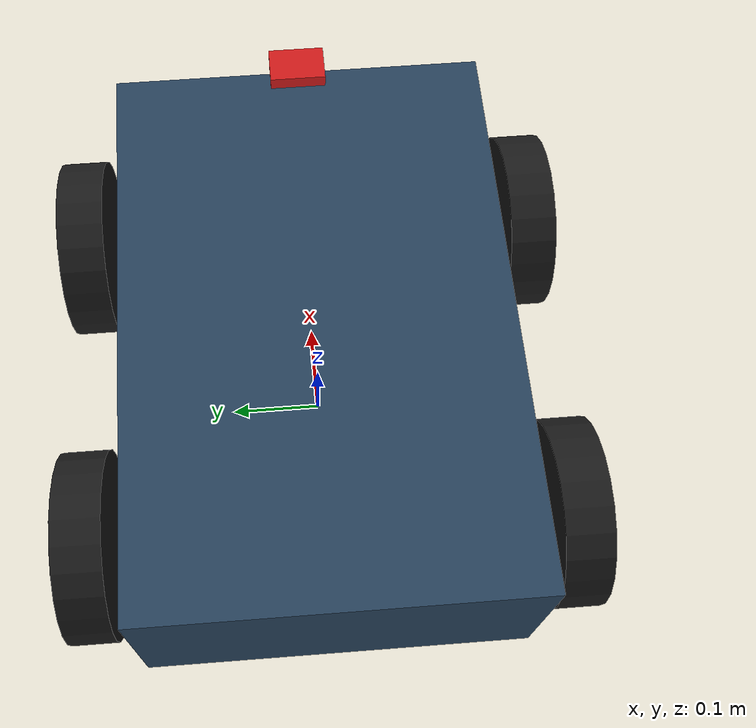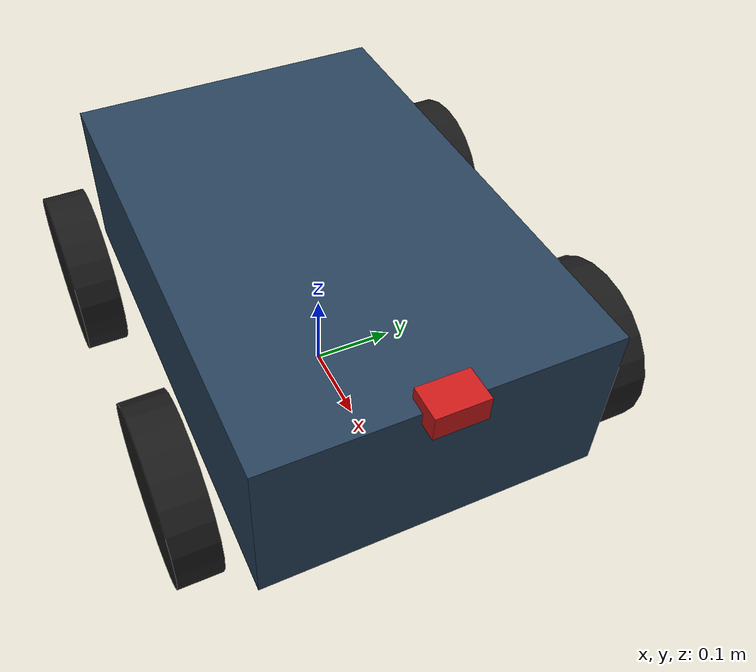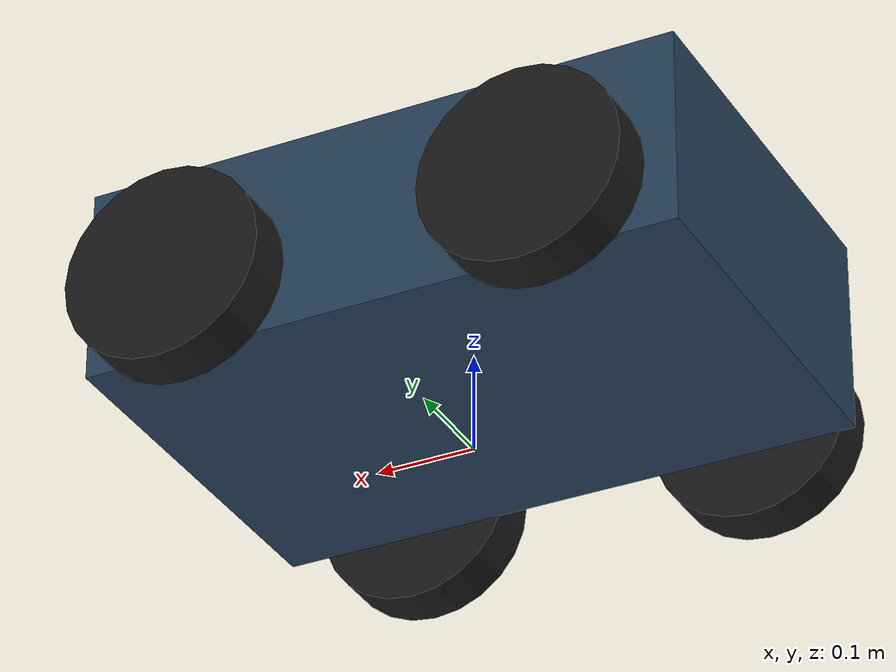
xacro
<?xml version="1.0"?>
<robot xmlns:xacro="http://www.ros.org/wiki/xacro" name="ugv">

  <!-- Dimensions and Physical Parameters -->
  <xacro:property name="chassis_length" value="0.60" />
  <xacro:property name="chassis_width" value="0.40" />
  <xacro:property name="chassis_height" value="0.20" />
  <xacro:property name="chassis_mass" value="15.0" />

  <xacro:property name="wheel_radius" value="0.10" />
  <xacro:property name="wheel_width" value="0.05" />
  <xacro:property name="wheel_mass" value="1.0" />

  <xacro:property name="wheel_x_offset" value="0.18" />
  <xacro:property name="wheel_y_offset" value="0.25" />
  <xacro:property name="wheel_z_offset" value="-0.05" />
  <xacro:property name="track_width" value="${wheel_y_offset * 2.0}" />
  <xacro:property name="base_link_z_offset" value="0.15" />

  <!-- Inertia Helper Macros -->
  <xacro:macro name="box_inertia" params="m x y z">
    <inertial>
      <origin xyz="0 0 -0.02" rpy="0 0 0" />
      <mass value="${m}" />
      <inertia ixx="${(m/12.0) * (y*y + z*z)}" ixy="0.0" ixz="0.0"
               iyy="${(m/12.0) * (x*x + z*z)}" iyz="0.0"
               izz="${(m/12.0) * (x*x + y*y)}" />
    </inertial>
  </xacro:macro>

  <xacro:macro name="cylinder_inertia" params="m r h">
    <inertial>
      <origin xyz="0 0 0" rpy="${pi/2} 0 0" />
      <mass value="${m}" />
      <inertia ixx="${(m/12.0) * (3*r*r + h*h)}" ixy="0.0" ixz="0.0"
               iyy="${(m/12.0) * (3*r*r + h*h)}" iyz="0.0"
               izz="${(m/2.0) * (r*r)}" />
    </inertial>
  </xacro:macro>

  <!-- Materials -->
  <material name="chassis_mat">
    <color rgba="0.15 0.25 0.35 1.0" />
  </material>
  <material name="wheel_mat">
    <color rgba="0.1 0.1 0.1 1.0" />
  </material>
  <material name="camera_mat">
    <color rgba="0.8 0.1 0.1 1.0" />
  </material>
  <material name="lidar_mat">
    <color rgba="0.2 0.2 0.2 1.0" />
  </material>

  <!-- Root: base_footprint (projection on ground plane at z=0) -->
  <link name="base_footprint" />

  <joint name="base_footprint_joint" type="fixed">
    <parent link="base_footprint" />
    <child link="base_link" />
    <origin xyz="0 0 ${base_link_z_offset}" rpy="0 0 0" />
  </joint>

  <!-- Chassis: base_link -->
  <link name="base_link">
    <xacro:box_inertia m="${chassis_mass}" x="${chassis_length}" y="${chassis_width}" z="${chassis_height}" />
    <visual>
      <origin xyz="0 0 0" rpy="0 0 0" />
      <geometry>
        <box size="${chassis_length} ${chassis_width} ${chassis_height}" />
      </geometry>
      <material name="chassis_mat" />
    </visual>
    <collision>
      <origin xyz="0 0 0" rpy="0 0 0" />
      <geometry>
        <box size="${chassis_length} ${chassis_width} ${chassis_height}" />
      </geometry>
    </collision>
  </link>

  <gazebo reference="base_link">
    <material>Gazebo/SlateGray</material>
  </gazebo>

  <!-- Wheel Macro -->
  <xacro:macro name="ugv_wheel" params="prefix parent x y z">
    <link name="${prefix}_wheel">
      <xacro:cylinder_inertia m="${wheel_mass}" r="${wheel_radius}" h="${wheel_width}" />
      <visual>
        <origin xyz="0 0 0" rpy="${pi/2} 0 0" />
        <geometry>
          <cylinder radius="${wheel_radius}" length="${wheel_width}" />
        </geometry>
        <material name="wheel_mat" />
      </visual>
      <collision>
        <origin xyz="0 0 0" rpy="${pi/2} 0 0" />
        <geometry>
          <cylinder radius="${wheel_radius}" length="${wheel_width}" />
        </geometry>
      </collision>
    </link>

    <joint name="${prefix}_wheel_joint" type="continuous">
      <parent link="${parent}" />
      <child link="${prefix}_wheel" />
      <origin xyz="${x} ${y} ${z}" rpy="0 0 0" />
      <axis xyz="0 1 0" />
    </joint>

    <gazebo reference="${prefix}_wheel">
      <mu1>1.0</mu1>
      <mu2>1.0</mu2>
      <kp>1000000.0</kp>
      <kd>100.0</kd>
      <minDepth>0.001</minDepth>
      <material>Gazebo/DarkGrey</material>
    </gazebo>
  </xacro:macro>

  <!-- 4 Wheels -->
  <xacro:ugv_wheel prefix="front_left"  parent="base_link" x="${wheel_x_offset}"  y="${wheel_y_offset}"  z="${wheel_z_offset}" />
  <xacro:ugv_wheel prefix="front_right" parent="base_link" x="${wheel_x_offset}"  y="-${wheel_y_offset}" z="${wheel_z_offset}" />
  <xacro:ugv_wheel prefix="rear_left"   parent="base_link" x="-${wheel_x_offset}" y="${wheel_y_offset}"  z="${wheel_z_offset}" />
  <xacro:ugv_wheel prefix="rear_right"  parent="base_link" x="-${wheel_x_offset}" y="-${wheel_y_offset}" z="${wheel_z_offset}" />

  <!-- Sensor Placeholders (prepared cleanly for later phases) -->

  <!-- Camera mount and optical frame -->
  <link name="camera_link">
    <visual>
      <origin xyz="0 0 0" rpy="0 0 0" />
      <geometry>
        <box size="0.04 0.06 0.03" />
      </geometry>
      <material name="camera_mat" />
    </visual>
  </link>

  <joint name="camera_joint" type="fixed">
    <parent link="base_link" />
    <child link="camera_link" />
    <origin xyz="${chassis_length/2.0} 0.0 ${chassis_height/2.0}" rpy="0 0 0" />
  </joint>

  <gazebo reference="camera_link">
    <material>Gazebo/Red</material>
    <sensor name="camera_sensor" type="camera">
      <always_on>1</always_on>
      <update_rate>20</update_rate>
      <visualize>false</visualize>
      <topic>camera</topic>
      <camera name="camera">
        <optical_frame_id>camera_optical_frame</optical_frame_id>
        <horizontal_fov>1.3962634</horizontal_fov>
        <image>
          <width>640</width>
          <height>480</height>
        </image>
        <clip>
          <near>0.1</near>
          <far>100</far>
        </clip>
      </camera>
    </sensor>
  </gazebo>

  <link name="camera_optical_frame" />

  <joint name="camera_optical_joint" type="fixed">
    <parent link="camera_link" />
    <child link="camera_optical_frame" />
    <origin xyz="0 0 0" rpy="${-pi/2} 0 ${-pi/2}" />
  </joint>

  <!-- LiDAR mount -->
  <link name="lidar_link" />

  <joint name="lidar_joint" type="fixed">
    <parent link="base_link" />
    <child link="lidar_link" />
    <origin xyz="0.0 0.0 ${chassis_height/2.0 + 0.125}" rpy="0 0 0" />
  </joint>

  <gazebo reference="lidar_link">
    <material>Gazebo/Black</material>
    <sensor name="gpu_lidar_sensor" type="gpu_lidar">
      <always_on>1</always_on>
      <update_rate>20</update_rate>
      <visualize>false</visualize>
      <topic>scan</topic>
      <ignition_frame_id>lidar_link</ignition_frame_id>
      <lidar>
        <scan>
          <horizontal>
            <samples>360</samples>
            <resolution>1</resolution>
            <min_angle>-3.14159265358979</min_angle>
            <max_angle>3.14159265358979</max_angle>
          </horizontal>
          <vertical>
            <samples>1</samples>
            <resolution>1</resolution>
            <min_angle>0.0</min_angle>
            <max_angle>0.0</max_angle>
          </vertical>
        </scan>
        <range>
          <min>0.1</min>
          <max>20.0</max>
          <resolution>0.01</resolution>
        </range>
      </lidar>
    </sensor>
  </gazebo>

  <!-- IMU link -->
  <link name="imu_link" />

  <joint name="imu_joint" type="fixed">
    <parent link="base_link" />
    <child link="imu_link" />
    <origin xyz="0.0 0.0 0.0" rpy="0 0 0" />
  </joint>

  <gazebo reference="imu_link">
    <sensor name="imu_sensor" type="imu">
      <always_on>1</always_on>
      <update_rate>100</update_rate>
      <visualize>false</visualize>
      <topic>imu</topic>
      <ignition_frame_id>imu_link</ignition_frame_id>
    </sensor>
  </gazebo>

  <!-- Gazebo Fortress Differential / Skid-Steer Drive Plugin -->
  <gazebo>
    <plugin filename="ignition-gazebo-diff-drive-system" name="gz::sim::systems::DiffDrive">
      <!-- Wheel Joints -->
      <left_joint>front_left_wheel_joint</left_joint>
      <left_joint>rear_left_wheel_joint</left_joint>
      <right_joint>front_right_wheel_joint</right_joint>
      <right_joint>rear_right_wheel_joint</right_joint>

      <!-- Kinematic Parameters -->
      <wheel_separation>${track_width}</wheel_separation>
      <wheel_radius>${wheel_radius}</wheel_radius>

      <!-- Wheel-Based Odometry Output -->
      <odom_publish_frequency>50</odom_publish_frequency>
      <odom_topic>/odom</odom_topic>
      <tf_topic>/tf</tf_topic>
      <frame_id>odom</frame_id>
      <child_frame_id>base_footprint</child_frame_id>

      <!-- Dynamic Limits -->
      <max_linear_acceleration>2.5</max_linear_acceleration>
      <min_linear_acceleration>-2.5</min_linear_acceleration>
      <max_angular_acceleration>3.0</max_angular_acceleration>
      <min_angular_acceleration>-3.0</min_angular_acceleration>
      <max_linear_velocity>1.5</max_linear_velocity>
      <min_linear_velocity>-1.5</min_linear_velocity>
      <max_angular_velocity>2.0</max_angular_velocity>
      <min_angular_velocity>-2.0</min_angular_velocity>

      <!-- Motion Command Topic -->
      <topic>/cmd_vel</topic>
    </plugin>
  </gazebo>

</robot>
